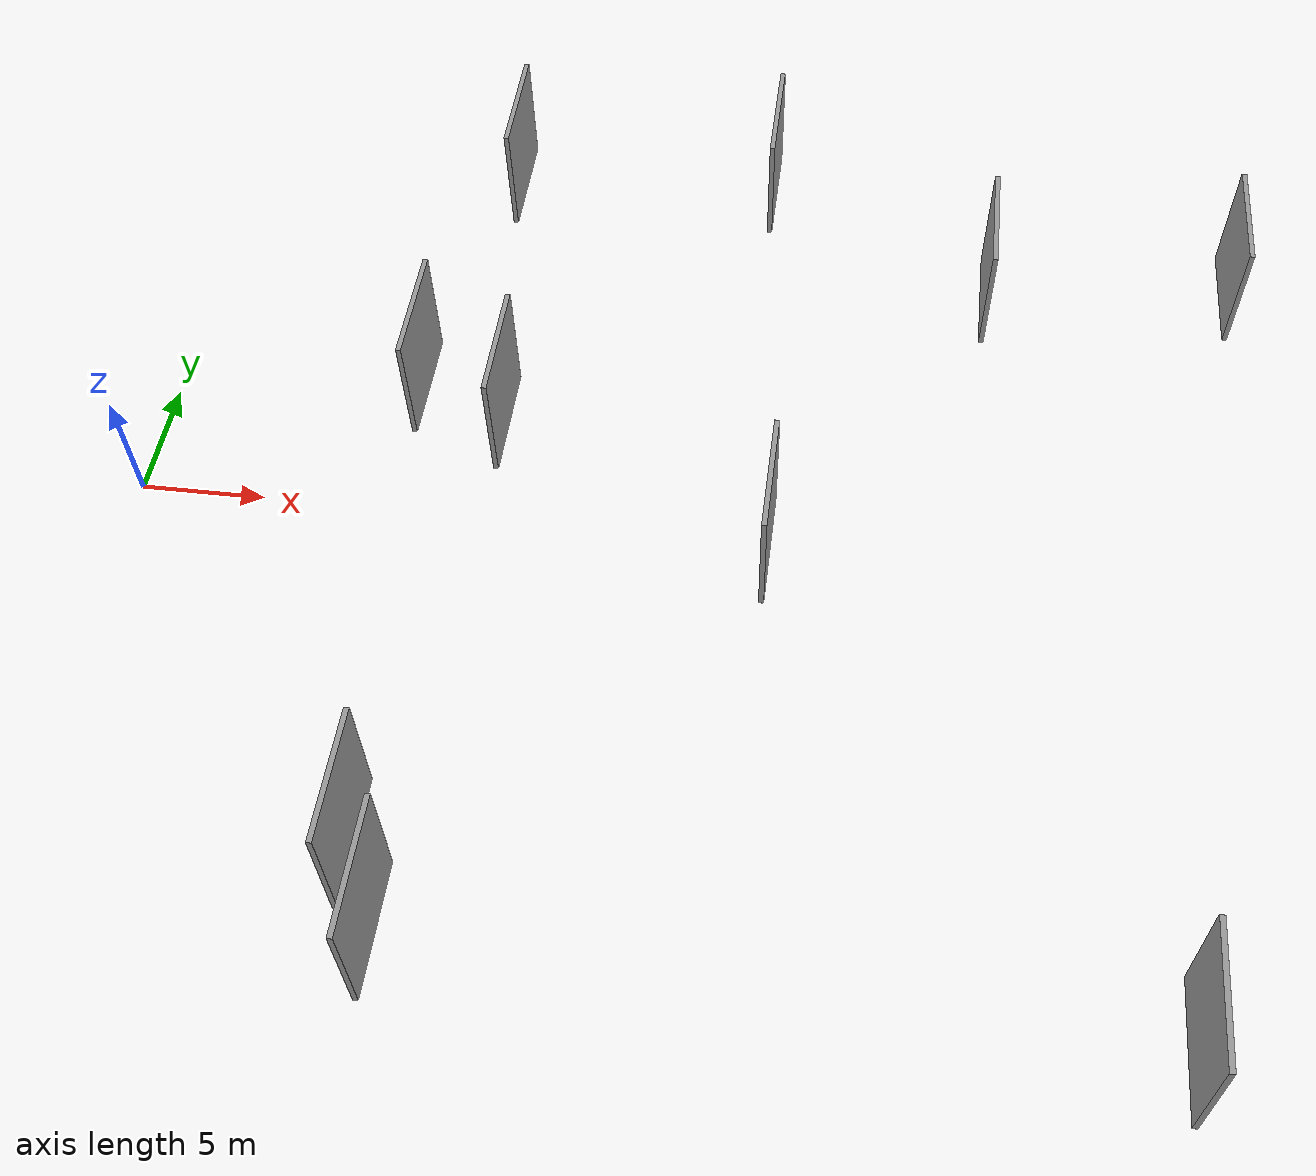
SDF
<sdf version="1.6">
 <world name="default">
  <scene>
   <sky><clouds><speed>12</speed></clouds></sky>
   <ambient>0.4 0.4 0.4 1</ambient>
   <background>0.7 0.7 0.7 1</background>
   <shadows>1</shadows>
  </scene>
  <gravity>0 0 -9.8066</gravity>
  <magnetic_field>6e-06 2.3e-05 -4.2e-05</magnetic_field>
  <physics default="0" name="default_physics" type="ode">
   <ode>
    <solver>
     <type>quick</type>
     <iters>10</iters>
     <sor>1.0</sor>
     <use_dynamic_moi_rescaling>0</use_dynamic_moi_rescaling>
    </solver>
    <constraints>
     <cfm>0</cfm>
     <erp>0.2</erp>
     <contact_max_correcting_vel>100</contact_max_correcting_vel>
     <contact_surface_layer>0.001</contact_surface_layer>
    </constraints>
   </ode>
   <max_step_size>0.004</max_step_size>
   <real_time_factor>1</real_time_factor>
   <real_time_update_rate>250</real_time_update_rate>
  </physics>
  <light name="sun" type="directional">
   <pose>0 0 10 0 0 0</pose>
   <diffuse>0.8 0.8 0.8 1</diffuse>
   <specular>0.2 0.2 0.2 1</specular>
   <attenuation>
    <range>1000</range>
    <constant>0.9</constant>
    <linear>0.01</linear>
    <quadratic>0.001</quadratic>
   </attenuation>
   <direction>-0.5 0.1 -0.9</direction>
  </light>
  <model name="grey_wall_1">
   <static>1</static>
   <pose>12.1497 -14.3832 0.0 0.000000 0.000000 1.570796</pose>
   <link name="link">
    <pose>0 0 2.50 0 0 0</pose>
    <collision name="collision"><geometry><box><size>5.00 0.2 5.00</size></box></geometry></collision>
    <visual name="visual">
     <cast_shadows>0</cast_shadows>
     <geometry><box><size>5.00 0.2 5.00</size></box></geometry>
     <material>
      <script>
       <uri>model://grey_wall/materials/scripts</uri>
       <uri>model://grey_wall/materials/textures</uri>
       <name>vrc/grey_wall</name>
      </script>
     </material>
    </visual>
   </link>
  </model>
  <model name="grey_wall_2">
   <static>1</static>
   <pose>23.6698 19.9763 0.0 0.000000 0.000000 1.570796</pose>
   <link name="link">
    <pose>0 0 2.50 0 0 0</pose>
    <collision name="collision"><geometry><box><size>5.00 0.2 5.00</size></box></geometry></collision>
    <visual name="visual">
     <cast_shadows>0</cast_shadows>
     <geometry><box><size>5.00 0.2 5.00</size></box></geometry>
     <material>
      <script>
       <uri>model://grey_wall/materials/scripts</uri>
       <uri>model://grey_wall/materials/textures</uri>
       <name>vrc/grey_wall</name>
      </script>
     </material>
    </visual>
   </link>
  </model>
  <model name="grey_wall_3">
   <static>1</static>
   <pose>40.8743 -18.4430 0.0 0.000000 0.000000 1.570796</pose>
   <link name="link">
    <pose>0 0 2.50 0 0 0</pose>
    <collision name="collision"><geometry><box><size>5.00 0.2 5.00</size></box></geometry></collision>
    <visual name="visual">
     <cast_shadows>0</cast_shadows>
     <geometry><box><size>5.00 0.2 5.00</size></box></geometry>
     <material>
      <script>
       <uri>model://grey_wall/materials/scripts</uri>
       <uri>model://grey_wall/materials/textures</uri>
       <name>vrc/grey_wall</name>
      </script>
     </material>
    </visual>
   </link>
  </model>
  <model name="grey_wall_4">
   <static>1</static>
   <pose>43.7912 15.7144 0.0 0.000000 0.000000 1.570796</pose>
   <link name="link">
    <pose>0 0 2.50 0 0 0</pose>
    <collision name="collision"><geometry><box><size>5.00 0.2 5.00</size></box></geometry></collision>
    <visual name="visual">
     <cast_shadows>0</cast_shadows>
     <geometry><box><size>5.00 0.2 5.00</size></box></geometry>
     <material>
      <script>
       <uri>model://grey_wall/materials/scripts</uri>
       <uri>model://grey_wall/materials/textures</uri>
       <name>vrc/grey_wall</name>
      </script>
     </material>
    </visual>
   </link>
  </model>
  <model name="grey_wall_5">
   <static>1</static>
   <pose>12.1300 19.2779 0.0 0.000000 0.000000 1.570796</pose>
   <link name="link">
    <pose>0 0 2.50 0 0 0</pose>
    <collision name="collision"><geometry><box><size>5.00 0.2 5.00</size></box></geometry></collision>
    <visual name="visual">
     <cast_shadows>0</cast_shadows>
     <geometry><box><size>5.00 0.2 5.00</size></box></geometry>
     <material>
      <script>
       <uri>model://grey_wall/materials/scripts</uri>
       <uri>model://grey_wall/materials/textures</uri>
       <name>vrc/grey_wall</name>
      </script>
     </material>
    </visual>
   </link>
  </model>
  <model name="grey_wall_6">
   <static>1</static>
   <pose>13.9455 5.0743 0.0 0.000000 0.000000 1.570796</pose>
   <link name="link">
    <pose>0 0 2.50 0 0 0</pose>
    <collision name="collision"><geometry><box><size>5.00 0.2 5.00</size></box></geometry></collision>
    <visual name="visual">
     <cast_shadows>0</cast_shadows>
     <geometry><box><size>5.00 0.2 5.00</size></box></geometry>
     <material>
      <script>
       <uri>model://grey_wall/materials/scripts</uri>
       <uri>model://grey_wall/materials/textures</uri>
       <name>vrc/grey_wall</name>
      </script>
     </material>
    </visual>
   </link>
  </model>
  <model name="grey_wall_7">
   <static>1</static>
   <pose>25.3070 -0.2064 0.0 0.000000 0.000000 1.570796</pose>
   <link name="link">
    <pose>0 0 2.50 0 0 0</pose>
    <collision name="collision"><geometry><box><size>5.00 0.2 5.00</size></box></geometry></collision>
    <visual name="visual">
     <cast_shadows>0</cast_shadows>
     <geometry><box><size>5.00 0.2 5.00</size></box></geometry>
     <material>
      <script>
       <uri>model://grey_wall/materials/scripts</uri>
       <uri>model://grey_wall/materials/textures</uri>
       <name>vrc/grey_wall</name>
      </script>
     </material>
    </visual>
   </link>
  </model>
  <model name="grey_wall_8">
   <static>1</static>
   <pose>13.6040 -17.4498 0.0 0.000000 0.000000 1.570796</pose>
   <link name="link">
    <pose>0 0 2.50 0 0 0</pose>
    <collision name="collision"><geometry><box><size>5.00 0.2 5.00</size></box></geometry></collision>
    <visual name="visual">
     <cast_shadows>0</cast_shadows>
     <geometry><box><size>5.00 0.2 5.00</size></box></geometry>
     <material>
      <script>
       <uri>model://grey_wall/materials/scripts</uri>
       <uri>model://grey_wall/materials/textures</uri>
       <name>vrc/grey_wall</name>
      </script>
     </material>
    </visual>
   </link>
  </model>
  <model name="grey_wall_9">
   <static>1</static>
   <pose>10.2431 6.5950 0.0 0.000000 0.000000 1.570796</pose>
   <link name="link">
    <pose>0 0 2.50 0 0 0</pose>
    <collision name="collision"><geometry><box><size>5.00 0.2 5.00</size></box></geometry></collision>
    <visual name="visual">
     <cast_shadows>0</cast_shadows>
     <geometry><box><size>5.00 0.2 5.00</size></box></geometry>
     <material>
      <script>
       <uri>model://grey_wall/materials/scripts</uri>
       <uri>model://grey_wall/materials/textures</uri>
       <name>vrc/grey_wall</name>
      </script>
     </material>
    </visual>
   </link>
  </model>
  <model name="grey_wall_10">
   <static>1</static>
   <pose>33.3614 14.3228 0.0 0.000000 0.000000 1.570796</pose>
   <link name="link">
    <pose>0 0 2.50 0 0 0</pose>
    <collision name="collision"><geometry><box><size>5.00 0.2 5.00</size></box></geometry></collision>
    <visual name="visual">
     <cast_shadows>0</cast_shadows>
     <geometry><box><size>5.00 0.2 5.00</size></box></geometry>
     <material>
      <script>
       <uri>model://grey_wall/materials/scripts</uri>
       <uri>model://grey_wall/materials/textures</uri>
       <name>vrc/grey_wall</name>
      </script>
     </material>
    </visual>
   </link>
  </model>
 </world>
</sdf>
